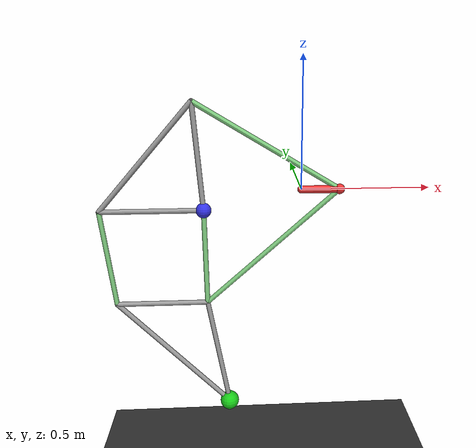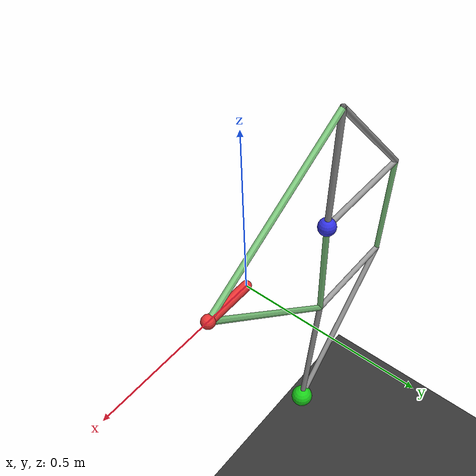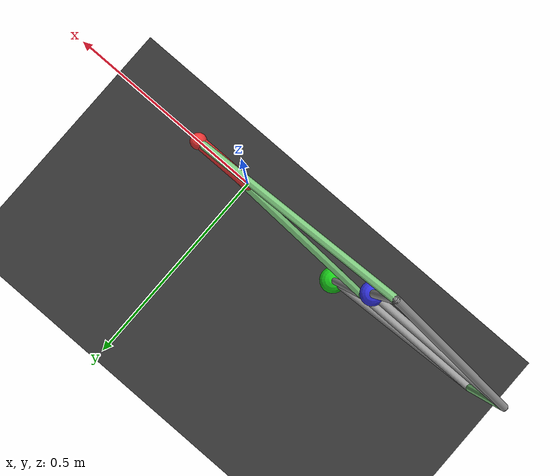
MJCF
<mujoco model="jansen_leg">
    <option timestep="0.002" integrator="RK4" gravity="0 0 -9.81"/>

    <default>
        <geom type="capsule" size="0.01" density="500" rgba="0.7 0.7 0.7 1"/>
        <joint damping="0.5" frictionloss="0.1"/>
        <site size="0.005" rgba="1 0 0 0"/>
    </default>

    <visual>
        <headlight ambient="0.4 0.4 0.4" diffuse="0.6 0.6 0.6" specular="0.1 0.1 0.1"/>
        <global offwidth="1920" offheight="1080"/>
    </visual>

    <worldbody>
        <light pos="0 0 5" dir="0 0 -1" diffuse="0.8 0.8 0.8"/>
        <geom name="floor" type="plane" pos="0 0 -1.5" size="5 5 0.1" rgba="0.2 0.2 0.2 1"/>

        <body name="crank" pos="0 0 0">
            <joint name="crank_joint" axis="0 1 0" />
            <geom name="crank_arm" type="capsule" fromto="0 0 0  0.15 0 0" rgba="0.9 0.2 0.2 1" size="0.015"/>

            <body name="crank_tip" pos="0.15 0 0">
                <geom type="sphere" size="0.02" rgba="0.9 0.2 0.2 1"/>
                <site name="s_crank_tip" pos="0 0 0"/>
            </body>
        </body>

        <body name="leg_anchor" pos="-0.38 0 -0.078">
            <geom type="sphere" size="0.03" rgba="0.2 0.2 0.9 1"/>

            <body name="upper_leg_triangle" pos="0 0 0">
                <joint name="upper_leg_joint" axis="0 1 0" pos="0 0 0"/>

                <geom name="ul_side_b" fromto="0 0 0  -0.027 0 0.414" rgba="0.6 0.6 0.6 1"/>
                <geom name="ul_side_d" fromto="0 0 0  -0.401 0 0" rgba="0.6 0.6 0.6 1"/>
                <geom name="ul_side_e" fromto="-0.027 0 0.414 -0.401 0 0" rgba="0.6 0.6 0.6 1"/>

                <body name="ul_top_vertex" pos="-0.027 0 0.414">
                    <site name="s_ul_top" pos="0 0 0"/>
                </body>
                <body name="ul_front_vertex" pos="-0.401 0 0">
                    <site name="s_ul_front" pos="0 0 0"/>
                </body>
            </body>

            <body name="link_c" pos="0 0 0">
                <joint name="link_c_joint" axis="0 1 0" pos="0 0 0"/>
                <geom name="geom_link_c" fromto="0 0 0  0 0 -0.393" rgba="0.5 0.8 0.5 1"/>

                <body name="lower_leg_triangle" pos="0 0 -0.393">
                    <joint name="lower_leg_joint" axis="0 1 0" pos="0 0 0"/>

                    <geom name="ll_side_g" fromto="0 0 0  -0.367 0 0" rgba="0.6 0.6 0.6 1"/>
                    <geom name="ll_side_i" fromto="0 0 0  0.077 0 -0.48" rgba="0.6 0.6 0.6 1"/>
                    <geom name="ll_side_h" fromto="-0.367 0 0  0.077 0 -0.48" rgba="0.6 0.6 0.6 1"/>

                    <geom name="foot_visual" type="sphere" pos="0.077 0 -0.48" size="0.04" rgba="0.1 0.8 0.1 1"/>

                    <body name="ll_mid_vertex" pos="0 0 0">
                        <site name="s_ll_mid" pos="0 0 0"/>
                    </body>
                    <body name="ll_knee_vertex" pos="-0.367 0 0">
                        <site name="s_ll_knee" pos="0 0 0"/>
                    </body>
                </body>
            </body>
        </body>
    </worldbody>

    <equality>
        <connect name="link_j" body1="crank_tip" body2="ul_top_vertex" anchor="0 0 0" solref="0.005 1"/>
        <connect name="link_k" body1="crank_tip" body2="ll_mid_vertex" anchor="0 0 0" solref="0.005 1"/>
        <connect name="link_f" body1="ul_front_vertex" body2="ll_knee_vertex" anchor="0 0 0" solref="0.005 1"/>
    </equality>

    <tendon>
        <spatial name="visual_link_j" width="0.01" rgba="0.5 0.8 0.5 1">
            <site site="s_crank_tip"/>
            <site site="s_ul_top"/>
        </spatial>
        <spatial name="visual_link_k" width="0.01" rgba="0.5 0.8 0.5 1">
            <site site="s_crank_tip"/>
            <site site="s_ll_mid"/>
        </spatial>
        <spatial name="visual_link_f" width="0.01" rgba="0.5 0.8 0.5 1">
            <site site="s_ul_front"/>
            <site site="s_ll_knee"/>
        </spatial>
    </tendon>

    <actuator>
        <motor joint="crank_joint" gear="100"/>
    </actuator>

</mujoco>
